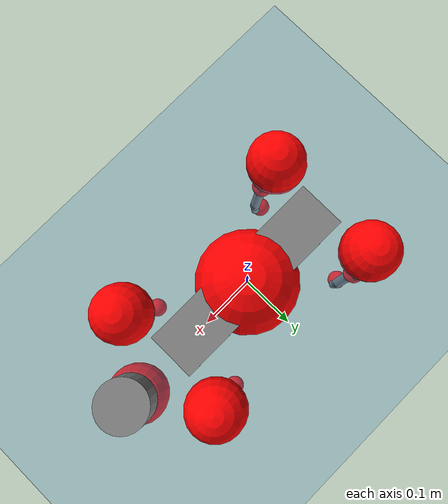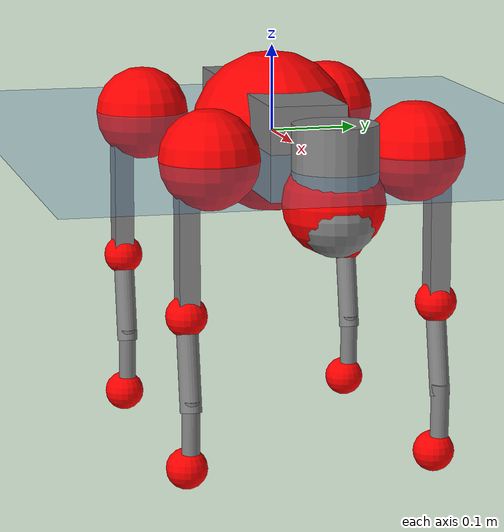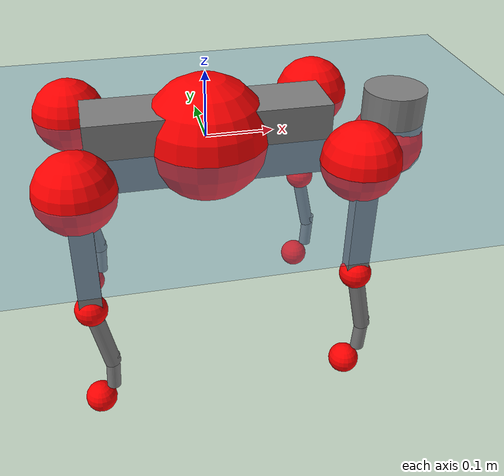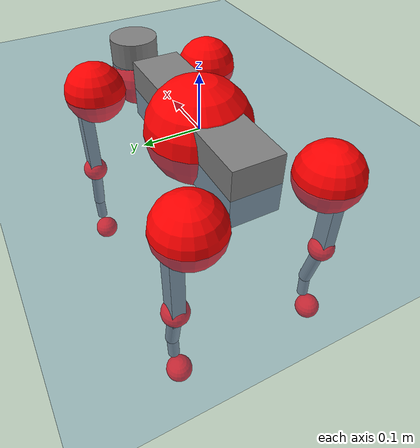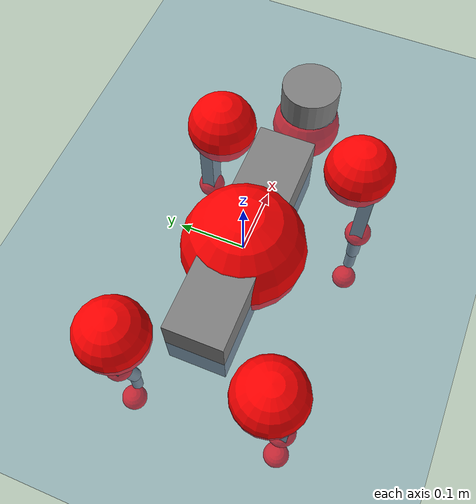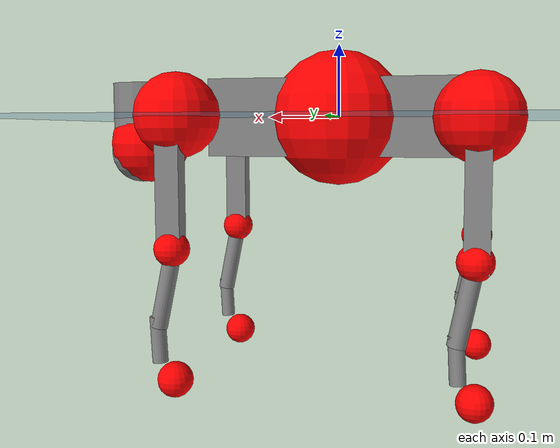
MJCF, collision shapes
<mujoco model="go2">
  <compiler angle="radian" assetdir="assets" balanceinertia="true" inertiafromgeom="false"/>

  <option timestep="0.005" density="1.2" viscosity="2e-05"/>

  <size nkey="1"/>

  <visual>
    <quality shadowsize="8192"/>
    <map shadowclip="0.5"/>
  </visual>

  <default>
    <default class="/">
      <geom contype="0" conaffinity="0" group="1" solref="-1000 -80"/>
      <site size="0.01 0.005 0.005" group="5"/>
      <general forcelimited="true" biastype="affine" gainprm="20" biasprm="0 -20 -0.5"/>
      <default class="go2">
        <joint armature="0.01" damping="0.01" frictionloss="0.2"/>
        <geom condim="1" margin="0.001"/>
        <default class="visual">
          <geom type="mesh" group="2"/>
        </default>
        <default class="collision">
          <geom group="3"/>
          <default class="foot">
            <geom size="0.022 0 0" condim="6" priority="1" friction="0.8 0.02 0.01" solimp="0.015 1 0.022"/>
          </default>
        </default>
        <default class="reward_collision_sphere">
          <geom group="5" rgba="1 0 0 1"/>
        </default>
      </default>
    </default>
  </default>

  <asset>
    <texture type="skybox" colorspace="auto" name="//unnamed_texture_0" builtin="gradient" rgb1="0.95 0.95 0.95" rgb2="0.95 0.95 0.95" width="100" height="600"/>
    <texture type="2d" colorspace="auto" name="texplane" builtin="checker" rgb1="0.345 0.575 0.748" rgb2="0.345 0.575 0.748" markrgb="1 1 1" width="512" height="512"/>
    <material name="MatPlane" class="/" texture="texplane" texuniform="true" texrepeat="2 2" specular="0.9"/>
    <material name="metal" class="/" rgba="0.9 0.95 0.95 1"/>
    <material name="black" class="/" rgba="0 0 0 1"/>
    <material name="white" class="/"/>
    <material name="gray" class="/" rgba="0.671705 0.692426 0.77427 1"/>
    <mesh name="base_0" class="/" file="base_0.obj"/>
    <mesh name="base_1" class="/" file="base_1.obj"/>
    <mesh name="base_2" class="/" file="base_2.obj"/>
    <mesh name="base_3" class="/" file="base_3.obj"/>
    <mesh name="base_4" class="/" file="base_4.obj"/>
    <mesh name="hip_0" class="/" file="hip_0.obj"/>
    <mesh name="hip_1" class="/" file="hip_1.obj"/>
    <mesh name="thigh_0" class="/" file="thigh_0.obj"/>
    <mesh name="thigh_1" class="/" file="thigh_1.obj"/>
    <mesh name="thigh_mirror_0" class="/" file="thigh_mirror_0.obj"/>
    <mesh name="thigh_mirror_1" class="/" file="thigh_mirror_1.obj"/>
    <mesh name="calf_0" class="/" file="calf_0.obj"/>
    <mesh name="calf_1" class="/" file="calf_1.obj"/>
    <mesh name="calf_mirror_0" class="/" file="calf_mirror_0.obj"/>
    <mesh name="calf_mirror_1" class="/" file="calf_mirror_1.obj"/>
    <mesh name="foot" class="/" file="foot.obj"/>
  </asset>

  <worldbody>
    <geom name="floor" class="/" size="100 100 0.125" type="plane" group="0" material="MatPlane"/>
    <light name="toplight_shadow" class="/" pos="0 0 5" dir="0.0990148 0.0990148 -0.990148" type="directional" ambient="0.04 0.04 0.04" diffuse="0.55 0.55 0.55" specular="0.12 0.12 0.12"/>
    <light name="toplight_fill" class="/" pos="0 0 5" dir="0.0990148 0.0990148 -0.990148" type="directional" castshadow="false" ambient="0.04 0.04 0.04" diffuse="0.3 0.3 0.3" specular="0.08 0.08 0.08"/>
    <body name="trunk" childclass="go2" pos="0.000236033 -9.82268e-05 -0.000792957" quat="1 -0.000351574 0.000227387 0.00026373">
      <inertial pos="0.0191625 -0.000882461 -0.0034929" quat="-0.000782205 0.713337 -0.0017425 0.700819" mass="5.88644" diaginertia="0.112215 0.0982135 0.00885175"/>
      <joint name="//unnamed_joint_0" type="free" armature="0" damping="0" frictionloss="0"/>
      <geom name="//unnamed_geom_1" class="visual" material="black" mesh="base_0"/>
      <geom name="//unnamed_geom_2" class="visual" material="black" mesh="base_1"/>
      <geom name="//unnamed_geom_3" class="visual" material="black" mesh="base_2"/>
      <geom name="//unnamed_geom_4" class="visual" material="white" mesh="base_3"/>
      <geom name="//unnamed_geom_5" class="visual" material="gray" mesh="base_4"/>
      <geom name="trunk_1" class="collision" size="0.177082 0.0440116 0.0536612" type="box"/>
      <geom name="trunk_2" class="collision" size="0.0470712 0.0423641" pos="0.287611 0 0.00815425" type="cylinder"/>
      <geom name="trunk_3" class="collision" size="0.0442469" pos="0.295684 0 -0.0489255"/>
      <geom name="//unnamed_geom_9" class="reward_collision_sphere" size="0.0941424"/>
      <geom name="//unnamed_geom_10" class="reward_collision_sphere" size="0.0564855" pos="0.282565 0 -0.0366941"/>
      <site name="imu" pos="-0.0190676 0.000403283 0.0278798" size="0.00941424"/>
      <camera name="track" pos="0 -1.99938 0" quat="0.707107 0.707107 0 0" mode="trackcom"/>
      <camera name="ego_camera" pos="0.314858 0 0.0366941" quat="-0.5 -0.5 0.5 0.5"/>
      <body name="FL_hip" pos="0.194377 0.046412 0.00207346" quat="1 -0.000172363 -3.74994e-05 -0.000233016">
        <inertial pos="-0.00528582 0.00222628 -0.000105246" quat="0.496997 0.499273 0.505402 0.498286" mass="0.545381" diaginertia="0.000901541 0.000577053 0.000168446"/>
        <joint name="FL_hip_joint" pos="0 0 0" axis="1 0.000709793 7.67959e-06" range="-1.04776 1.03039" armature="0.00928286" damping="0.00165797" frictionloss="0.19197"/>
        <geom name="//unnamed_geom_11" class="visual" material="metal" mesh="hip_0"/>
        <geom name="//unnamed_geom_12" class="visual" material="gray" mesh="hip_1"/>
        <geom name="//unnamed_geom_13" class="collision" size="0.0433055 0.0188285" pos="0 0.079975 0" quat="0.707107 0.707107 0 0" type="cylinder"/>
        <geom name="//unnamed_geom_14" class="reward_collision_sphere" size="0.0564855" pos="0 0.0699781 0"/>
        <body name="FL_thigh" pos="6.41222e-05 0.0966306 0.00125226" quat="1 0.000326461 -0.000356486 0.000313585">
          <inertial pos="-0.004085 -0.022132 -0.0273637" quat="0.829827 0.0839694 -0.019217 0.551333" mass="0.95984" diaginertia="0.00620239 0.0056803 0.000313415"/>
          <joint name="FL_thigh_joint" pos="0 0 0" axis="-0.00783699 0.999957 -0.00498754" stiffness="0.00211518" range="-1.54868 3.48476" armature="0.0094943" damping="0.00755111" frictionloss="0.195654"/>
          <geom name="//unnamed_geom_15" class="visual" material="metal" mesh="thigh_0"/>
          <geom name="//unnamed_geom_16" class="visual" material="gray" mesh="thigh_1"/>
          <geom name="//unnamed_geom_17" class="collision" size="0.100262 0.0115324 0.0160042" pos="0 0 -0.0868427" quat="0.707107 0 0.707107 0" type="box"/>
          <body name="FL_calf" pos="-0.000927417 -4.82605e-05 -0.174033" quat="1 -3.42581e-05 -1.97707e-05 -6.00266e-05">
            <inertial pos="0.0063577 -0.000425817 -0.113808" quat="0.710443 0.00061722 -0.00409235 0.703743" mass="0.200941" diaginertia="0.00154022 0.00146133 1.91025e-05"/>
            <joint name="FL_calf_joint" pos="0 0 0" axis="0.00468046 0.999988 0.00166659" range="-2.73424 -0.836278" armature="0.00908946" damping="0.000463371" frictionloss="0.187556"/>
            <geom name="//unnamed_geom_18" class="visual" material="gray" mesh="calf_0"/>
            <geom name="//unnamed_geom_19" class="visual" material="black" mesh="calf_1"/>
            <geom name="FL_calf0" class="collision" size="0.0112971 0.0564855" pos="0.00807328 0 -0.0489255" quat="0.994493 0 -0.104807 0" type="cylinder"/>
            <geom name="//unnamed_geom_21" class="collision" size="0.0103557 0.0305963" pos="0.0201832 0 -0.120683" quat="0.999688 0 0.0249974 0" type="cylinder"/>
            <geom name="//unnamed_geom_22" class="visual" pos="0 0 -0.173685" quat="1 0 0 0" material="black" mesh="foot"/>
            <geom name="FL_foot" class="foot" size="0.0182347" pos="-0.00201832 0 -0.173685"/>
            <geom name="//unnamed_geom_24" class="reward_collision_sphere" size="0.0235356"/>
            <geom name="//unnamed_geom_25" class="reward_collision_sphere" size="0.0235356" pos="-0.00201832 0 -0.173685"/>
            <site name="FL_foot" class="foot" pos="-0.00201832 0 -0.173685" size="0.00941424"/>
          </body>
        </body>
      </body>
      <body name="FR_hip" pos="0.194488 -0.0473208 0.000956945" quat="1 1.22182e-05 -1.2289e-06 2.6867e-05">
        <inertial pos="-0.00464225 -0.00383443 7.22039e-05" quat="0.504774 0.506328 0.494007 0.494765" mass="0.567518" diaginertia="0.000926247 0.000608006 0.000173796"/>
        <joint name="FR_hip_joint" pos="0 0 0" axis="0.999983 0.00201881 -0.00544592" range="-1.042 1.04581" armature="0.00961109" damping="0.00790628" frictionloss="0.180151"/>
        <geom name="//unnamed_geom_26" class="visual" pos="0 1.60522e-09 6.88513e-08" quat="4.63268e-05 1 0 0" material="metal" mesh="hip_0"/>
        <geom name="//unnamed_geom_27" class="visual" pos="0 2.60226e-09 -1.70296e-07" quat="4.63268e-05 1 0 0" material="gray" mesh="hip_1"/>
        <geom name="//unnamed_geom_28" class="collision" size="0.0433055 0.0188285" pos="0 -0.079975 0" quat="0.707107 0.707107 0 0" type="cylinder"/>
        <geom name="//unnamed_geom_29" class="reward_collision_sphere" size="0.0564855" pos="0 -0.0699781 0"/>
        <body name="FR_thigh" pos="-0.000376648 -0.0954168 -0.000683957" quat="1 0.000302158 0.000284789 0.000191989">
          <inertial pos="-0.00215116 0.0230036 -0.0257814" quat="0.55065 -0.0167102 0.0852091 0.830208" mass="0.961066" diaginertia="0.00624614 0.00576613 0.000321016"/>
          <joint name="FR_thigh_joint" pos="0 0 0" axis="0.00285355 -0.999995 0.00105692" range="-3.50669 1.5679" armature="0.00962238" damping="0.0120821" frictionloss="0.179201"/>
          <geom name="//unnamed_geom_30" class="visual" material="metal" mesh="thigh_mirror_0"/>
          <geom name="//unnamed_geom_31" class="visual" material="gray" mesh="thigh_mirror_1"/>
          <geom name="//unnamed_geom_32" class="collision" size="0.100262 0.0115324 0.0160042" pos="0 0 -0.0868427" quat="0.707107 0 0.707107 0" type="box"/>
          <body name="FR_calf" pos="0.000634798 -0.00109347 -0.173" quat="1 -0.000155639 -8.5823e-05 0.00031677">
            <inertial pos="0.00621852 0.000670467 -0.115493" quat="0.701348 -0.0052197 0.00938679 0.712738" mass="0.200235" diaginertia="0.00154628 0.00148458 1.92741e-05"/>
            <joint name="FR_calf_joint" pos="0 0 0" axis="0.00305788 -0.999993 -0.00232424" range="0.807819 2.73717" armature="0.00961775" damping="0.015404" frictionloss="0.179017"/>
            <geom name="//unnamed_geom_33" class="visual" material="gray" mesh="calf_mirror_0"/>
            <geom name="//unnamed_geom_34" class="visual" material="black" mesh="calf_mirror_1"/>
            <geom name="FR_calf0" class="collision" size="0.0122385 0.0564855" pos="0.0100916 0 -0.0489255" quat="0.995004 0 -0.0998334 0" type="cylinder"/>
            <geom name="//unnamed_geom_36" class="collision" size="0.0103557 0.0305963" pos="0.0201832 0 -0.120683" quat="0.999688 0 0.0249974 0" type="cylinder"/>
            <geom name="//unnamed_geom_37" class="visual" pos="0 0 -0.173685" quat="1 0 0 0" material="black" mesh="foot"/>
            <geom name="FR_foot" class="foot" size="0.0217896" pos="-0.00201832 0 -0.173685"/>
            <geom name="//unnamed_geom_39" class="reward_collision_sphere" size="0.0235356"/>
            <geom name="//unnamed_geom_40" class="reward_collision_sphere" size="0.0235356" pos="-0.00201832 0 -0.173685"/>
            <site name="FR_foot" class="foot" pos="-0.00201832 0 -0.173685" size="0.00941424"/>
          </body>
        </body>
      </body>
      <body name="RL_hip" pos="-0.194215 0.0472282 -0.00199111" quat="1 1.10539e-05 0.000168589 -3.80071e-05">
        <inertial pos="0.00552661 0.0019197 -0.00186552" quat="0.505189 0.497696 0.4986 0.498478" mass="0.576822" diaginertia="0.000966518 0.000605627 0.000178183"/>
        <joint name="RL_hip_joint" pos="0 0 0" axis="-0.999791 -0.00532003 0.0197444" stiffness="0.00444182" range="-1.04622 1.03317" armature="0.00923662" damping="0.00108279" frictionloss="0.189218"/>
        <geom name="//unnamed_geom_41" class="visual" pos="-1.68775e-09 0 -3.30837e-07" quat="4.63268e-05 0 1 0" material="metal" mesh="hip_0"/>
        <geom name="//unnamed_geom_42" class="visual" pos="-2.73604e-09 0 -2.93405e-07" quat="4.63268e-05 0 1 0" material="gray" mesh="hip_1"/>
        <geom name="//unnamed_geom_43" class="collision" size="0.0433055 0.0188285" pos="0 0.079975 0" quat="0.707107 0.707107 0 0" type="cylinder"/>
        <geom name="//unnamed_geom_44" class="reward_collision_sphere" size="0.0564855" pos="0 0.0699781 0"/>
        <body name="RL_thigh" pos="-0.000237597 0.0963541 -0.00102255" quat="1 2.4835e-05 -0.000207655 0.000456182">
          <inertial pos="-0.00562137 -0.0229677 -0.0283254" quat="0.829499 0.0846784 -0.0203728 0.551676" mass="0.975007" diaginertia="0.00610015 0.00583101 0.0003141"/>
          <joint name="RL_thigh_joint" pos="0 0 0" axis="-0.000566898 0.999998 0.00178912" stiffness="0.0093129" range="-0.504114 4.54553" armature="0.00952081" damping="0.00479545" frictionloss="0.189216"/>
          <geom name="//unnamed_geom_45" class="visual" material="metal" mesh="thigh_0"/>
          <geom name="//unnamed_geom_46" class="visual" material="gray" mesh="thigh_1"/>
          <geom name="//unnamed_geom_47" class="collision" size="0.100262 0.0115324 0.0160042" pos="0 0 -0.0868427" quat="0.707107 0 0.707107 0" type="box"/>
          <body name="RL_calf" pos="0.00125516 -0.00109224 -0.17312" quat="1 -3.37333e-06 9.03581e-06 6.63486e-05">
            <inertial pos="0.00542214 0.000603593 -0.114452" quat="0.710404 0.00253512 -0.00186161 0.703787" mass="0.206455" diaginertia="0.00160553 0.00151373 1.94951e-05"/>
            <joint name="RL_calf_joint" pos="0 0 0" axis="0.00297352 0.999955 0.00900129" range="-2.70532 -0.833895" armature="0.0100412" damping="0.00650174" frictionloss="0.183092"/>
            <geom name="//unnamed_geom_48" class="visual" material="gray" mesh="calf_0"/>
            <geom name="//unnamed_geom_49" class="visual" material="black" mesh="calf_1"/>
            <geom name="RL_calf0" class="collision" size="0.0122385 0.0564855" pos="0.0100916 0 -0.0489255" quat="0.995004 0 -0.0998334 0" type="cylinder"/>
            <geom name="//unnamed_geom_51" class="collision" size="0.0103557 0.0305963" pos="0.0201832 0 -0.120683" quat="0.999688 0 0.0249974 0" type="cylinder"/>
            <geom name="//unnamed_geom_52" class="visual" pos="0 0 -0.173685" quat="1 0 0 0" material="black" mesh="foot"/>
            <geom name="RL_foot" class="foot" size="0.0181129" pos="-0.00201832 0 -0.173685"/>
            <geom name="//unnamed_geom_54" class="reward_collision_sphere" size="0.0235356"/>
            <geom name="//unnamed_geom_55" class="reward_collision_sphere" size="0.0235356" pos="-0.00201832 0 -0.173685"/>
            <site name="RL_foot" class="foot" pos="-0.00201832 0 -0.173685" size="0.00941424"/>
          </body>
        </body>
      </body>
      <body name="RR_hip" pos="-0.193237 -0.0463059 -0.00266796" quat="1 -0.000103194 0.000104259 2.89672e-05">
        <inertial pos="0.00602564 -0.00279034 -0.00156717" quat="0.49901 0.505449 0.494081 0.501393" mass="0.556384" diaginertia="0.000901801 0.000580539 0.000169183"/>
        <joint name="RR_hip_joint" pos="0 0 0" axis="-0.999975 0.00213242 0.00678962" range="-1.06646 1.02809" armature="0.00984634" damping="0.00851178" frictionloss="0.187899"/>
        <geom name="//unnamed_geom_56" class="visual" pos="1.68742e-09 1.60522e-09 -3.99688e-07" quat="2.14617e-09 4.63268e-05 4.63268e-05 -1" material="metal" mesh="hip_0"/>
        <geom name="//unnamed_geom_57" class="visual" pos="2.73685e-09 2.60226e-09 -1.2311e-07" quat="2.14617e-09 4.63268e-05 4.63268e-05 -1" material="gray" mesh="hip_1"/>
        <geom name="//unnamed_geom_58" class="collision" size="0.0433055 0.0188285" pos="0 -0.079975 0" quat="0.707107 0.707107 0 0" type="cylinder"/>
        <geom name="//unnamed_geom_59" class="reward_collision_sphere" size="0.0564855" pos="0 -0.0699781 0"/>
        <body name="RR_thigh" pos="0.00177256 -0.0962093 -0.00172088" quat="1 -0.000306227 0.000151199 9.56719e-05">
          <inertial pos="-0.00374399 0.021622 -0.0268826" quat="0.551421 -0.0204254 0.0852796 0.829605" mass="0.966894" diaginertia="0.00626067 0.00585352 0.000316912"/>
          <joint name="RR_thigh_joint" pos="0 0 0" axis="-0.00289652 -0.999972 0.00693118" range="-4.5531 0.53539" armature="0.00923199" damping="0.0102566" frictionloss="0.186259"/>
          <geom name="//unnamed_geom_60" class="visual" material="metal" mesh="thigh_mirror_0"/>
          <geom name="//unnamed_geom_61" class="visual" material="gray" mesh="thigh_mirror_1"/>
          <geom name="//unnamed_geom_62" class="collision" size="0.100262 0.0115324 0.0160042" pos="0 0 -0.0868427" quat="0.707107 0 0.707107 0" type="box"/>
          <body name="RR_calf" pos="-0.000362222 0.000966424 -0.173886" quat="1 0.000555541 -0.000109808 -0.000264436">
            <inertial pos="0.00659773 0.0016259 -0.115748" quat="0.702942 -0.00456391 0.00106176 0.711232" mass="0.203758" diaginertia="0.00158423 0.00146141 1.93589e-05"/>
            <joint name="RR_calf_joint" pos="0 0 0" axis="-0.00246424 -0.999996 0.00155431" stiffness="0.000704847" range="0.840172 2.74983" armature="0.00948744" damping="0.0139246" frictionloss="0.178947"/>
            <geom name="//unnamed_geom_63" class="visual" material="gray" mesh="calf_mirror_0"/>
            <geom name="//unnamed_geom_64" class="visual" material="black" mesh="calf_mirror_1"/>
            <geom name="RR_calf0" class="collision" size="0.0122385 0.0564855" pos="0.0100916 0 -0.0489255" quat="0.995004 0 -0.0998334 0" type="cylinder"/>
            <geom name="//unnamed_geom_66" class="collision" size="0.0103557 0.0305963" pos="0.0201832 0 -0.120683" quat="0.999688 0 0.0249974 0" type="cylinder"/>
            <geom name="//unnamed_geom_67" class="visual" pos="0 0 -0.173685" quat="1 0 0 0" material="black" mesh="foot"/>
            <geom name="RR_foot" class="foot" size="0.0221879" pos="-0.00201832 0 -0.173685"/>
            <geom name="//unnamed_geom_69" class="reward_collision_sphere" size="0.0235356"/>
            <geom name="//unnamed_geom_70" class="reward_collision_sphere" size="0.0235356" pos="-0.00201832 0 -0.173685"/>
            <site name="RR_foot" class="foot" pos="-0.00201832 0 -0.173685" size="0.00941424"/>
          </body>
        </body>
      </body>
    </body>
  </worldbody>

  <contact>
    <pair class="/" geom1="floor" geom2="FL_foot" name="//unnamed_contact_0"/>
    <pair class="/" geom1="floor" geom2="FR_foot" name="//unnamed_contact_1"/>
    <pair class="/" geom1="floor" geom2="RL_foot" name="//unnamed_contact_2"/>
    <pair class="/" geom1="floor" geom2="RR_foot" name="//unnamed_contact_3"/>
  </contact>

  <actuator>
    <general name="FL_hip" class="/" joint="FL_hip_joint" forcerange="-22.0352 22.0352" gainprm="19.3028" biasprm="0 -19.3028 -0.480995"/>
    <general name="FL_thigh" class="/" joint="FL_thigh_joint" forcerange="-21.0634 21.0634" gainprm="19.3028" biasprm="0 -19.3028 -0.480995"/>
    <general name="FL_calf" class="/" joint="FL_calf_joint" forcerange="-43.8675 43.8675" gainprm="19.3028" biasprm="0 -19.3028 -0.480995"/>
    <general name="FR_hip" class="/" joint="FR_hip_joint" forcerange="-22.0065 22.0065" gainprm="19.3028" biasprm="0 -19.3028 -0.480995"/>
    <general name="FR_thigh" class="/" joint="FR_thigh_joint" forcerange="-22.1123 22.1123" gainprm="19.3028" biasprm="0 -19.3028 -0.480995"/>
    <general name="FR_calf" class="/" joint="FR_calf_joint" forcerange="-42.1622 42.1622" gainprm="19.3028" biasprm="0 -19.3028 -0.480995"/>
    <general name="RL_hip" class="/" joint="RL_hip_joint" forcerange="-22.0971 22.0971" gainprm="19.3028" biasprm="0 -19.3028 -0.480995"/>
    <general name="RL_thigh" class="/" joint="RL_thigh_joint" forcerange="-22.4098 22.4098" gainprm="19.3028" biasprm="0 -19.3028 -0.480995"/>
    <general name="RL_calf" class="/" joint="RL_calf_joint" forcerange="-41.3161 41.3161" gainprm="19.3028" biasprm="0 -19.3028 -0.480995"/>
    <general name="RR_hip" class="/" joint="RR_hip_joint" forcerange="-21.8926 21.8926" gainprm="19.3028" biasprm="0 -19.3028 -0.480995"/>
    <general name="RR_thigh" class="/" joint="RR_thigh_joint" forcerange="-22.986 22.986" gainprm="19.3028" biasprm="0 -19.3028 -0.480995"/>
    <general name="RR_calf" class="/" joint="RR_calf_joint" forcerange="-42.4024 42.4024" gainprm="19.3028" biasprm="0 -19.3028 -0.480995"/>
  </actuator>

  <sensor>
    <gyro site="imu" name="imu_angular_velocity"/>
    <velocimeter site="imu" name="imu_linear_velocity"/>
    <framelinvel objtype="site" objname="FL_foot" name="FL_foot_global_linear_velocity"/>
    <framelinvel objtype="site" objname="FR_foot" name="FR_foot_global_linear_velocity"/>
    <framelinvel objtype="site" objname="RL_foot" name="RL_foot_global_linear_velocity"/>
    <framelinvel objtype="site" objname="RR_foot" name="RR_foot_global_linear_velocity"/>
  </sensor>

  <keyframe>
    <key name="home" qpos="0 0 0.325 1 0 0 0 0.1 0.8 -1.5 -0.1 -0.8 1.5 -0.1 0.8 -1.5 0.1 -0.8 1.5"/>
  </keyframe>
</mujoco>
